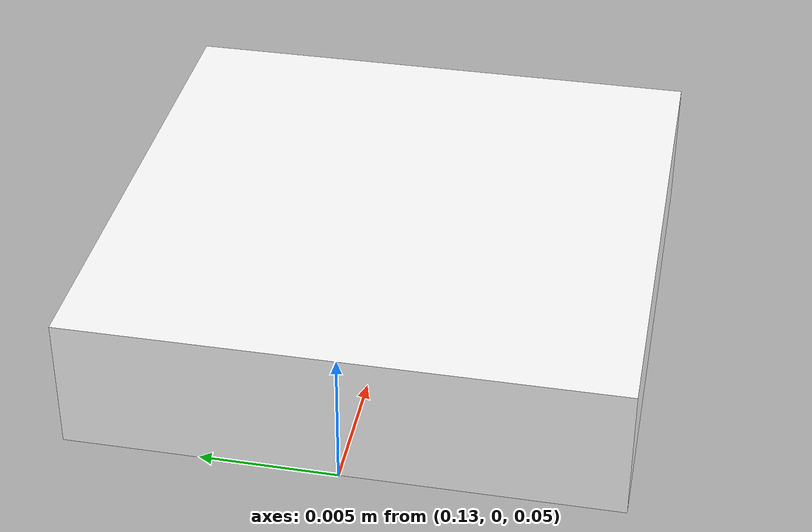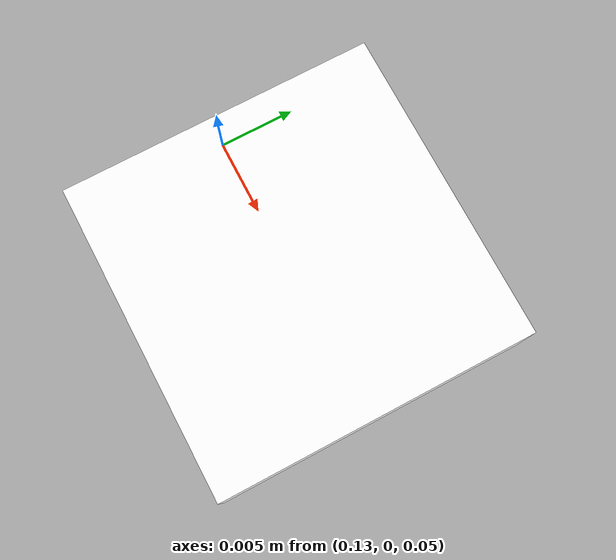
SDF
<?xml version="1.0" ?>
<sdf version="1.8">
  <world name="empty">
    <physics name="1ms" type="ignored">
      <max_step_size>0.001</max_step_size>
      <real_time_factor>1.0</real_time_factor>
    </physics>

    <plugin
      filename="ignition-gazebo-physics-system"
      name="ignition::gazebo::systems::Physics"/>
    <plugin
      filename="ignition-gazebo-user-commands-system"
      name="ignition::gazebo::systems::UserCommands"/>
    <plugin
      filename="ignition-gazebo-scene-broadcaster-system"
      name="ignition::gazebo::systems::SceneBroadcaster"/>
    <plugin
      filename="ignition-gazebo-contact-system"
      name="ignition::gazebo::systems::Contact"/>
    <plugin
      filename="ignition-gazebo-sensors-system"
      name="ignition::gazebo::systems::Sensors">
      <render_engine>ogre</render_engine>
    </plugin>

    <scene>
      <ambient>0.32 0.32 0.32 1</ambient>
      <background>0.55 0.55 0.55 1</background>
    </scene>

    <light type="directional" name="sun">
      <cast_shadows>false</cast_shadows>
      <pose>0 0 10 0 0 0</pose>
      <intensity>1.6</intensity>
      <diffuse>0.7 0.7 0.7 1</diffuse>
      <specular>0.3 0.3 0.3 1</specular>
      <attenuation>
        <range>1000</range>
        <constant>0.9</constant>
        <linear>0.01</linear>
        <quadratic>0.001</quadratic>
      </attenuation>
      <direction>-0.5 0.1 -0.9</direction>
    </light>

    <model name="substrate">
      <static>true</static>
      <pose>0.14 0 0.0525 0 0 0</pose>
      <link name="substrate_link">
        <collision name="substrate_link_collision">
          <geometry>
            <box>
              <size>0.02 0.02 0.005</size>
            </box>
          </geometry>
          <max_contacts>4</max_contacts>
          <surface>
            <contact>
              <ode>
                <kp>1000000</kp>
                <kd>100</kd>
                <max_vel>0.01</max_vel>
                <min_depth>0</min_depth>
              </ode>
            </contact>
          </surface>
        </collision>
        <visual name="substrate_link_visual">
          <geometry>
            <box>
              <size>0.02 0.02 0.005</size>
            </box>
          </geometry>
          <material>
            <ambient>1 1 1 1</ambient>
            <diffuse>1 1 1 1</diffuse>
            <pbr>
              <metal>
                <albedo_map>model://robot_system_description/materials/textures/substrate_pattern.png</albedo_map>
              </metal>
            </pbr>
          </material>
        </visual>
        <sensor name="substrate_contact_sensor" type="contact">
          <contact>
            <collision>substrate_link_collision</collision>
          </contact>
          <always_on>true</always_on>
          <update_rate>50</update_rate>
        </sensor>
      </link>
    </model>

    <model name="ground_plane">
      <static>true</static>
      <link name="link">
        <collision name="collision">
          <geometry>
            <plane>
              <normal>0 0 1</normal>
              <size>100 100</size>
            </plane>
          </geometry>
        </collision>
        <visual name="visual">
          <geometry>
            <plane>
              <normal>0 0 1</normal>
              <size>100 100</size>
            </plane>
          </geometry>
          <material>
            <ambient>0.5 0.5 0.5 1</ambient>
            <diffuse>0.6 0.6 0.6 1</diffuse>
            <specular>0.2 0.2 0.2 1</specular>
          </material>
        </visual>
      </link>
    </model>
  </world>
</sdf>
